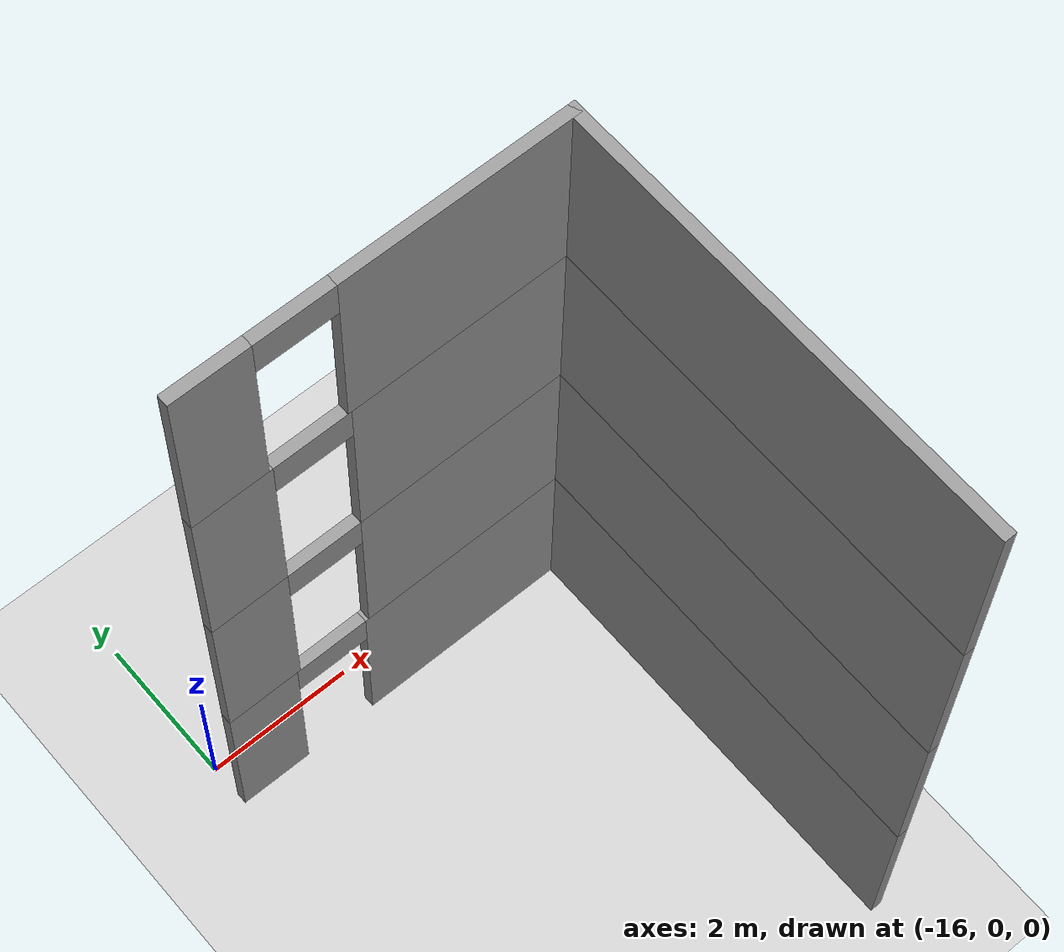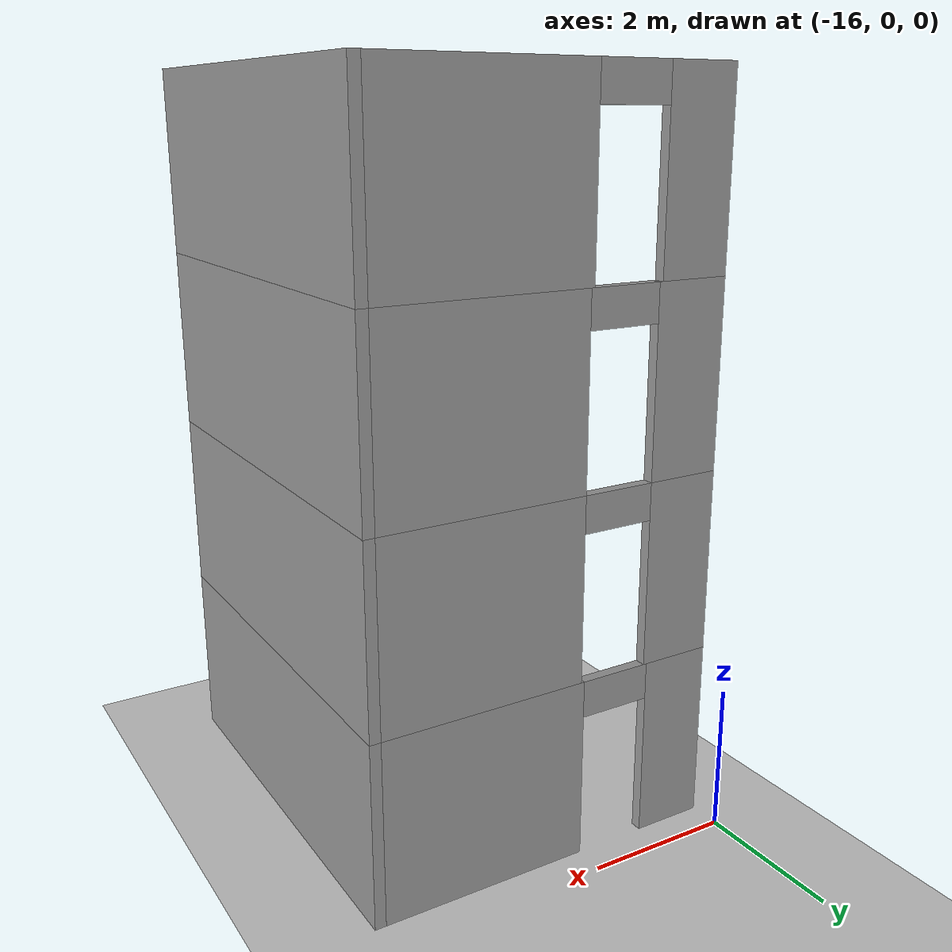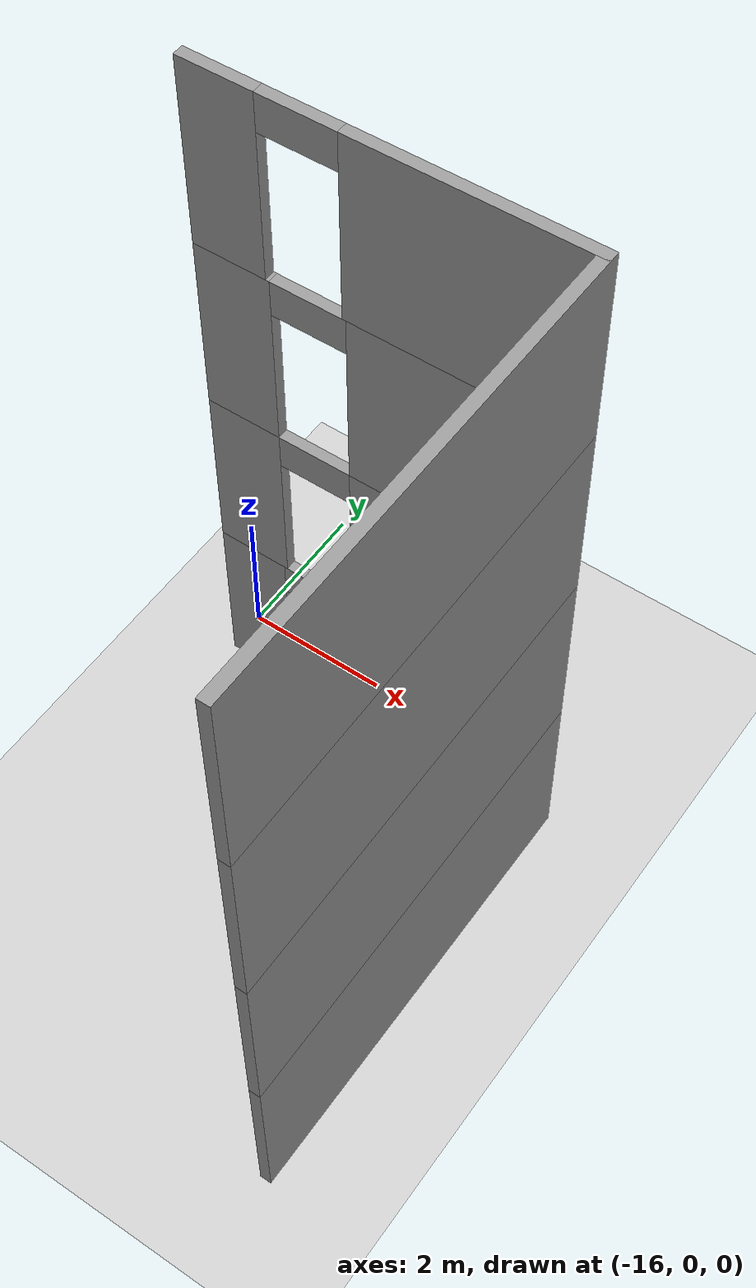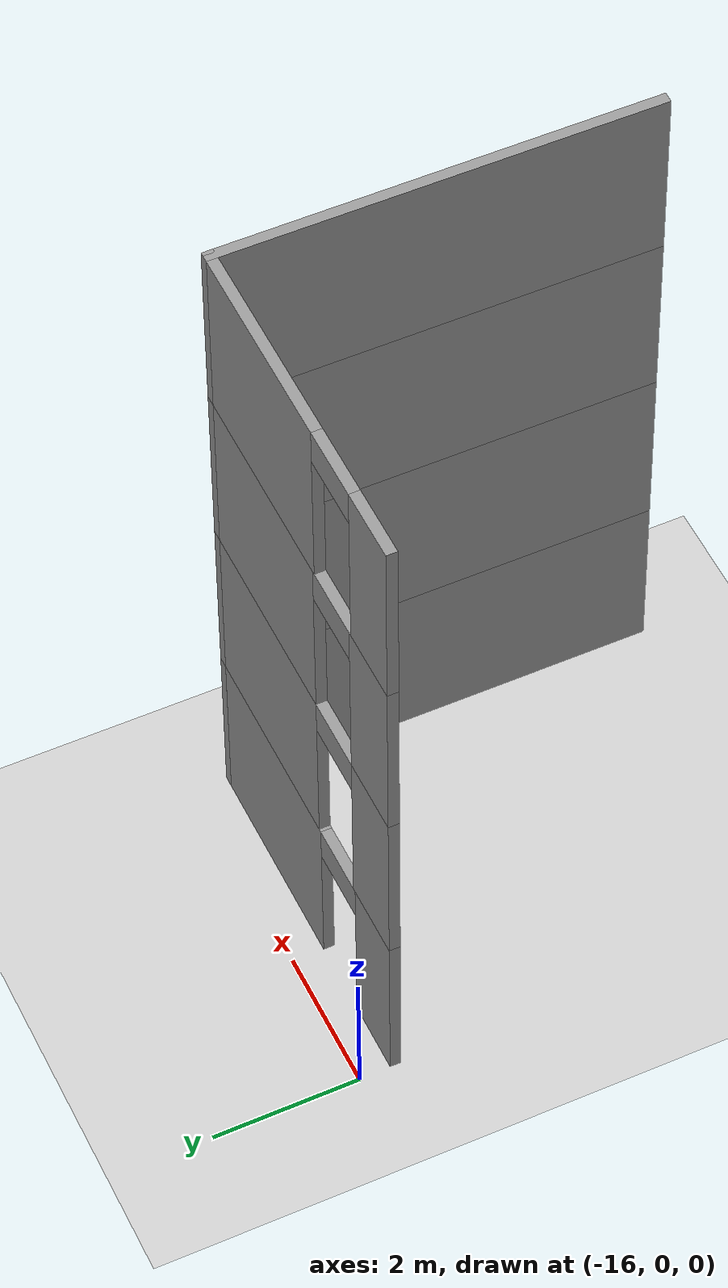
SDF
<sdf version="1.6">
 <world name="default">
  <model name="ground_plane">
   <static>1</static>
   <link name="link">
    <collision name="collision">
     <geometry><plane><normal>0 0 1</normal><size>100 100</size></plane></geometry>
     <surface>
      <contact><collide_bitmask>65535</collide_bitmask></contact>
      <friction><ode><mu>100</mu><mu2>50</mu2></ode></friction>
     </surface>
    </collision>
    <visual name="visual">
     <cast_shadows>0</cast_shadows>
     <geometry><plane><normal>0 0 1</normal><size>100 100</size></plane></geometry>
     <material>
      <script><uri>file://media/materials/scripts/gazebo.material</uri><name>Gazebo/Grey</name></script>
     </material>
    </visual>
   </link>
  </model>
  <model name="floor2plan_v2">
   <link name="Wall_112">
    <pose>-13.4109 -0.509284 5 0 -0 0</pose>
    <visual name="Wall_112_Visual_2">
     <pose>-0.976 0 2.25 0 -0 0</pose>
     <geometry><box><size>1 0.15 0.5</size></box></geometry>
     <material>
      <script><uri>file://media/materials/scripts/gazebo.material</uri><name>Gazebo/Grey</name></script>
      <ambient>1 1 1 1</ambient>
      <shader type="pixel"/>
      <diffuse>0.7 0.7 0.7 1</diffuse>
      <specular>0.01 0.01 0.01 1</specular>
      <emissive>0 0 0 1</emissive>
     </material>
     <meta><layer>2</layer></meta>
    </visual>
    <visual name="Wall_112_Visual_0">
     <pose>-1.988 0 1.25 0 -0 0</pose>
     <geometry><box><size>1.024 0.15 2.5</size></box></geometry>
     <material>
      <script><uri>file://media/materials/scripts/gazebo.material</uri><name>Gazebo/Grey</name></script>
      <ambient>1 1 1 1</ambient>
      <shader type="pixel"/>
      <diffuse>0.7 0.7 0.7 1</diffuse>
      <specular>0.01 0.01 0.01 1</specular>
      <emissive>0 0 0 1</emissive>
     </material>
     <meta><layer>2</layer></meta>
    </visual>
    <visual name="Wall_112_Visual_1">
     <pose>1.012 0 1.25 0 -0 0</pose>
     <geometry><box><size>2.976 0.15 2.5</size></box></geometry>
     <material>
      <script><uri>file://media/materials/scripts/gazebo.material</uri><name>Gazebo/Grey</name></script>
      <ambient>1 1 1 1</ambient>
      <shader type="pixel"/>
      <diffuse>0.7 0.7 0.7 1</diffuse>
      <specular>0.01 0.01 0.01 1</specular>
      <emissive>0 0 0 1</emissive>
     </material>
     <meta><layer>2</layer></meta>
    </visual>
    <collision name="Wall_112_Collision_0">
     <pose>-1.988 0 1.25 0 -0 0</pose>
     <geometry><box><size>1.024 0.15 2.5</size></box></geometry>
     <surface>
      <friction>
       <ode><mu>1</mu><mu2>1</mu2><fdir1>0 0 0</fdir1><slip1>0</slip1><slip2>0</slip2></ode>
       <torsional>
        <coefficient>1</coefficient>
        <patch_radius>0</patch_radius>
        <surface_radius>0</surface_radius>
        <use_patch_radius>1</use_patch_radius>
        <ode><slip>0</slip></ode>
       </torsional>
      </friction>
      <bounce><restitution_coefficient>0</restitution_coefficient><threshold>1e+06</threshold></bounce>
      <contact>
       <collide_without_contact>0</collide_without_contact>
       <collide_without_contact_bitmask>1</collide_without_contact_bitmask>
       <collide_bitmask>1</collide_bitmask>
       <ode>
        <soft_cfm>0</soft_cfm>
        <soft_erp>0.2</soft_erp>
        <kp>1e+13</kp>
        <kd>1</kd>
        <max_vel>0.01</max_vel>
        <min_depth>0</min_depth>
       </ode>
       <bullet>
        <split_impulse>1</split_impulse>
        <split_impulse_penetration_threshold>-0.01</split_impulse_penetration_threshold>
        <soft_cfm>0</soft_cfm>
        <soft_erp>0.2</soft_erp>
        <kp>1e+13</kp>
        <kd>1</kd>
       </bullet>
      </contact>
     </surface>
    </collision>
    <collision name="Wall_112_Collision_1">
     <pose>1.012 0 1.25 0 -0 0</pose>
     <geometry><box><size>2.976 0.15 2.5</size></box></geometry>
     <surface>
      <friction>
       <ode><mu>1</mu><mu2>1</mu2><fdir1>0 0 0</fdir1><slip1>0</slip1><slip2>0</slip2></ode>
       <torsional>
        <coefficient>1</coefficient>
        <patch_radius>0</patch_radius>
        <surface_radius>0</surface_radius>
        <use_patch_radius>1</use_patch_radius>
        <ode><slip>0</slip></ode>
       </torsional>
      </friction>
      <bounce><restitution_coefficient>0</restitution_coefficient><threshold>1e+06</threshold></bounce>
      <contact>
       <collide_without_contact>0</collide_without_contact>
       <collide_without_contact_bitmask>1</collide_without_contact_bitmask>
       <collide_bitmask>1</collide_bitmask>
       <ode>
        <soft_cfm>0</soft_cfm>
        <soft_erp>0.2</soft_erp>
        <kp>1e+13</kp>
        <kd>1</kd>
        <max_vel>0.01</max_vel>
        <min_depth>0</min_depth>
       </ode>
       <bullet>
        <split_impulse>1</split_impulse>
        <split_impulse_penetration_threshold>-0.01</split_impulse_penetration_threshold>
        <soft_cfm>0</soft_cfm>
        <soft_erp>0.2</soft_erp>
        <kp>1e+13</kp>
        <kd>1</kd>
       </bullet>
      </contact>
     </surface>
    </collision>
    <collision name="Wall_112_Collision_2">
     <pose>-0.976 0 2.25 0 -0 0</pose>
     <geometry><box><size>1 0.15 0.5</size></box></geometry>
     <surface>
      <friction>
       <ode><mu>1</mu><mu2>1</mu2><fdir1>0 0 0</fdir1><slip1>0</slip1><slip2>0</slip2></ode>
       <torsional>
        <coefficient>1</coefficient>
        <patch_radius>0</patch_radius>
        <surface_radius>0</surface_radius>
        <use_patch_radius>1</use_patch_radius>
        <ode><slip>0</slip></ode>
       </torsional>
      </friction>
      <bounce><restitution_coefficient>0</restitution_coefficient><threshold>1e+06</threshold></bounce>
      <contact>
       <collide_without_contact>0</collide_without_contact>
       <collide_without_contact_bitmask>1</collide_without_contact_bitmask>
       <collide_bitmask>1</collide_bitmask>
       <ode>
        <soft_cfm>0</soft_cfm>
        <soft_erp>0.2</soft_erp>
        <kp>1e+13</kp>
        <kd>1</kd>
        <max_vel>0.01</max_vel>
        <min_depth>0</min_depth>
       </ode>
       <bullet>
        <split_impulse>1</split_impulse>
        <split_impulse_penetration_threshold>-0.01</split_impulse_penetration_threshold>
        <soft_cfm>0</soft_cfm>
        <soft_erp>0.2</soft_erp>
        <kp>1e+13</kp>
        <kd>1</kd>
       </bullet>
      </contact>
     </surface>
    </collision>
   </link>
   <link name="Wall_113">
    <pose>-10.9859 -3.43428 5 0 0 -1.5708</pose>
    <visual name="Wall_113_Visual">
     <pose>0 0 1.25 0 -0 0</pose>
     <geometry><box><size>6 0.15 2.5</size></box></geometry>
     <material>
      <script><uri>file://media/materials/scripts/gazebo.material</uri><name>Gazebo/Grey</name></script>
      <ambient>1 1 1 1</ambient>
      <shader type="pixel"/>
      <diffuse>0.7 0.7 0.7 1</diffuse>
      <specular>0.01 0.01 0.01 1</specular>
      <emissive>0 0 0 1</emissive>
     </material>
     <meta><layer>2</layer></meta>
    </visual>
    <collision name="Wall_113_Collision">
     <pose>0 0 1.25 0 -0 0</pose>
     <geometry><box><size>6 0.15 2.5</size></box></geometry>
     <surface>
      <friction>
       <ode><mu>1</mu><mu2>1</mu2><fdir1>0 0 0</fdir1><slip1>0</slip1><slip2>0</slip2></ode>
       <torsional>
        <coefficient>1</coefficient>
        <patch_radius>0</patch_radius>
        <surface_radius>0</surface_radius>
        <use_patch_radius>1</use_patch_radius>
        <ode><slip>0</slip></ode>
       </torsional>
      </friction>
      <bounce><restitution_coefficient>0</restitution_coefficient><threshold>1e+06</threshold></bounce>
      <contact>
       <collide_without_contact>0</collide_without_contact>
       <collide_without_contact_bitmask>1</collide_without_contact_bitmask>
       <collide_bitmask>1</collide_bitmask>
       <ode>
        <soft_cfm>0</soft_cfm>
        <soft_erp>0.2</soft_erp>
        <kp>1e+13</kp>
        <kd>1</kd>
        <max_vel>0.01</max_vel>
        <min_depth>0</min_depth>
       </ode>
       <bullet>
        <split_impulse>1</split_impulse>
        <split_impulse_penetration_threshold>-0.01</split_impulse_penetration_threshold>
        <soft_cfm>0</soft_cfm>
        <soft_erp>0.2</soft_erp>
        <kp>1e+13</kp>
        <kd>1</kd>
       </bullet>
      </contact>
     </surface>
    </collision>
   </link>
   <link name="Wall_138">
    <pose>-13.4109 -0.509284 7.5 0 -0 0</pose>
    <visual name="Wall_138_Visual_0">
     <pose>-2.011 0 1.25 0 -0 0</pose>
     <geometry><box><size>0.978 0.15 2.5</size></box></geometry>
     <material>
      <script><uri>file://media/materials/scripts/gazebo.material</uri><name>Gazebo/Grey</name></script>
      <ambient>1 1 1 1</ambient>
      <shader type="pixel"/>
      <diffuse>0.7 0.7 0.7 1</diffuse>
      <specular>0.01 0.01 0.01 1</specular>
      <emissive>0 0 0 1</emissive>
     </material>
     <meta><layer>3</layer></meta>
    </visual>
    <visual name="Wall_138_Visual_1">
     <pose>0.989 0 1.25 0 -0 0</pose>
     <geometry><box><size>3.022 0.15 2.5</size></box></geometry>
     <material>
      <script><uri>file://media/materials/scripts/gazebo.material</uri><name>Gazebo/Grey</name></script>
      <ambient>1 1 1 1</ambient>
      <shader type="pixel"/>
      <diffuse>0.7 0.7 0.7 1</diffuse>
      <specular>0.01 0.01 0.01 1</specular>
      <emissive>0 0 0 1</emissive>
     </material>
     <meta><layer>3</layer></meta>
    </visual>
    <visual name="Wall_138_Visual_2">
     <pose>-1.022 0 2.25 0 -0 0</pose>
     <geometry><box><size>1 0.15 0.5</size></box></geometry>
     <material>
      <script><uri>file://media/materials/scripts/gazebo.material</uri><name>Gazebo/Grey</name></script>
      <ambient>1 1 1 1</ambient>
      <shader type="pixel"/>
      <diffuse>0.7 0.7 0.7 1</diffuse>
      <specular>0.01 0.01 0.01 1</specular>
      <emissive>0 0 0 1</emissive>
     </material>
     <meta><layer>3</layer></meta>
    </visual>
    <collision name="Wall_138_Collision_0">
     <pose>-2.011 0 1.25 0 -0 0</pose>
     <geometry><box><size>0.978 0.15 2.5</size></box></geometry>
     <surface>
      <friction>
       <ode><mu>1</mu><mu2>1</mu2><fdir1>0 0 0</fdir1><slip1>0</slip1><slip2>0</slip2></ode>
       <torsional>
        <coefficient>1</coefficient>
        <patch_radius>0</patch_radius>
        <surface_radius>0</surface_radius>
        <use_patch_radius>1</use_patch_radius>
        <ode><slip>0</slip></ode>
       </torsional>
      </friction>
      <bounce><restitution_coefficient>0</restitution_coefficient><threshold>1e+06</threshold></bounce>
      <contact>
       <collide_without_contact>0</collide_without_contact>
       <collide_without_contact_bitmask>1</collide_without_contact_bitmask>
       <collide_bitmask>1</collide_bitmask>
       <ode>
        <soft_cfm>0</soft_cfm>
        <soft_erp>0.2</soft_erp>
        <kp>1e+13</kp>
        <kd>1</kd>
        <max_vel>0.01</max_vel>
        <min_depth>0</min_depth>
       </ode>
       <bullet>
        <split_impulse>1</split_impulse>
        <split_impulse_penetration_threshold>-0.01</split_impulse_penetration_threshold>
        <soft_cfm>0</soft_cfm>
        <soft_erp>0.2</soft_erp>
        <kp>1e+13</kp>
        <kd>1</kd>
       </bullet>
      </contact>
     </surface>
    </collision>
    <collision name="Wall_138_Collision_1">
     <pose>0.989 0 1.25 0 -0 0</pose>
     <geometry><box><size>3.022 0.15 2.5</size></box></geometry>
     <surface>
      <friction>
       <ode><mu>1</mu><mu2>1</mu2><fdir1>0 0 0</fdir1><slip1>0</slip1><slip2>0</slip2></ode>
       <torsional>
        <coefficient>1</coefficient>
        <patch_radius>0</patch_radius>
        <surface_radius>0</surface_radius>
        <use_patch_radius>1</use_patch_radius>
        <ode><slip>0</slip></ode>
       </torsional>
      </friction>
      <bounce><restitution_coefficient>0</restitution_coefficient><threshold>1e+06</threshold></bounce>
      <contact>
       <collide_without_contact>0</collide_without_contact>
       <collide_without_contact_bitmask>1</collide_without_contact_bitmask>
       <collide_bitmask>1</collide_bitmask>
       <ode>
        <soft_cfm>0</soft_cfm>
        <soft_erp>0.2</soft_erp>
        <kp>1e+13</kp>
        <kd>1</kd>
        <max_vel>0.01</max_vel>
        <min_depth>0</min_depth>
       </ode>
       <bullet>
        <split_impulse>1</split_impulse>
        <split_impulse_penetration_threshold>-0.01</split_impulse_penetration_threshold>
        <soft_cfm>0</soft_cfm>
        <soft_erp>0.2</soft_erp>
        <kp>1e+13</kp>
        <kd>1</kd>
       </bullet>
      </contact>
     </surface>
    </collision>
    <collision name="Wall_138_Collision_2">
     <pose>-1.022 0 2.25 0 -0 0</pose>
     <geometry><box><size>1 0.15 0.5</size></box></geometry>
     <surface>
      <friction>
       <ode><mu>1</mu><mu2>1</mu2><fdir1>0 0 0</fdir1><slip1>0</slip1><slip2>0</slip2></ode>
       <torsional>
        <coefficient>1</coefficient>
        <patch_radius>0</patch_radius>
        <surface_radius>0</surface_radius>
        <use_patch_radius>1</use_patch_radius>
        <ode><slip>0</slip></ode>
       </torsional>
      </friction>
      <bounce><restitution_coefficient>0</restitution_coefficient><threshold>1e+06</threshold></bounce>
      <contact>
       <collide_without_contact>0</collide_without_contact>
       <collide_without_contact_bitmask>1</collide_without_contact_bitmask>
       <collide_bitmask>1</collide_bitmask>
       <ode>
        <soft_cfm>0</soft_cfm>
        <soft_erp>0.2</soft_erp>
        <kp>1e+13</kp>
        <kd>1</kd>
        <max_vel>0.01</max_vel>
        <min_depth>0</min_depth>
       </ode>
       <bullet>
        <split_impulse>1</split_impulse>
        <split_impulse_penetration_threshold>-0.01</split_impulse_penetration_threshold>
        <soft_cfm>0</soft_cfm>
        <soft_erp>0.2</soft_erp>
        <kp>1e+13</kp>
        <kd>1</kd>
       </bullet>
      </contact>
     </surface>
    </collision>
   </link>
   <link name="Wall_139">
    <pose>-10.9859 -3.43428 7.5 0 0 -1.5708</pose>
    <visual name="Wall_139_Visual">
     <pose>0 0 1.25 0 -0 0</pose>
     <geometry><box><size>6 0.15 2.5</size></box></geometry>
     <material>
      <script><uri>file://media/materials/scripts/gazebo.material</uri><name>Gazebo/Grey</name></script>
      <ambient>1 1 1 1</ambient>
      <shader type="pixel"/>
      <diffuse>0.7 0.7 0.7 1</diffuse>
      <specular>0.01 0.01 0.01 1</specular>
      <emissive>0 0 0 1</emissive>
     </material>
     <meta><layer>3</layer></meta>
    </visual>
    <collision name="Wall_139_Collision">
     <pose>0 0 1.25 0 -0 0</pose>
     <geometry><box><size>6 0.15 2.5</size></box></geometry>
     <surface>
      <friction>
       <ode><mu>1</mu><mu2>1</mu2><fdir1>0 0 0</fdir1><slip1>0</slip1><slip2>0</slip2></ode>
       <torsional>
        <coefficient>1</coefficient>
        <patch_radius>0</patch_radius>
        <surface_radius>0</surface_radius>
        <use_patch_radius>1</use_patch_radius>
        <ode><slip>0</slip></ode>
       </torsional>
      </friction>
      <bounce><restitution_coefficient>0</restitution_coefficient><threshold>1e+06</threshold></bounce>
      <contact>
       <collide_without_contact>0</collide_without_contact>
       <collide_without_contact_bitmask>1</collide_without_contact_bitmask>
       <collide_bitmask>1</collide_bitmask>
       <ode>
        <soft_cfm>0</soft_cfm>
        <soft_erp>0.2</soft_erp>
        <kp>1e+13</kp>
        <kd>1</kd>
        <max_vel>0.01</max_vel>
        <min_depth>0</min_depth>
       </ode>
       <bullet>
        <split_impulse>1</split_impulse>
        <split_impulse_penetration_threshold>-0.01</split_impulse_penetration_threshold>
        <soft_cfm>0</soft_cfm>
        <soft_erp>0.2</soft_erp>
        <kp>1e+13</kp>
        <kd>1</kd>
       </bullet>
      </contact>
     </surface>
    </collision>
   </link>
   <link name="Wall_44">
    <pose>-13.4109 -0.509284 0 0 -0 0</pose>
    <visual name="Wall_44_Visual_0">
     <pose>-2.011 0 1.25 0 -0 0</pose>
     <geometry><box><size>0.978 0.15 2.5</size></box></geometry>
     <material>
      <script><uri>file://media/materials/scripts/gazebo.material</uri><name>Gazebo/Grey</name></script>
      <ambient>1 1 1 1</ambient>
      <shader type="pixel"/>
      <diffuse>0.7 0.7 0.7 1</diffuse>
      <specular>0.01 0.01 0.01 1</specular>
      <emissive>0 0 0 1</emissive>
     </material>
     <meta><layer>0</layer></meta>
    </visual>
    <visual name="Wall_44_Visual_1">
     <pose>0.989 0 1.25 0 -0 0</pose>
     <geometry><box><size>3.022 0.15 2.5</size></box></geometry>
     <material>
      <script><uri>file://media/materials/scripts/gazebo.material</uri><name>Gazebo/Grey</name></script>
      <ambient>1 1 1 1</ambient>
      <shader type="pixel"/>
      <diffuse>0.7 0.7 0.7 1</diffuse>
      <specular>0.01 0.01 0.01 1</specular>
      <emissive>0 0 0 1</emissive>
     </material>
     <meta><layer>0</layer></meta>
    </visual>
    <visual name="Wall_44_Visual_2">
     <pose>-1.022 0 2.25 0 -0 0</pose>
     <geometry><box><size>1 0.15 0.5</size></box></geometry>
     <material>
      <script><uri>file://media/materials/scripts/gazebo.material</uri><name>Gazebo/Grey</name></script>
      <ambient>1 1 1 1</ambient>
      <shader type="pixel"/>
      <diffuse>0.7 0.7 0.7 1</diffuse>
      <specular>0.01 0.01 0.01 1</specular>
      <emissive>0 0 0 1</emissive>
     </material>
     <meta><layer>0</layer></meta>
    </visual>
    <collision name="Wall_44_Collision_0">
     <pose>-2.011 0 1.25 0 -0 0</pose>
     <geometry><box><size>0.978 0.15 2.5</size></box></geometry>
     <surface>
      <friction>
       <ode><mu>1</mu><mu2>1</mu2><fdir1>0 0 0</fdir1><slip1>0</slip1><slip2>0</slip2></ode>
       <torsional>
        <coefficient>1</coefficient>
        <patch_radius>0</patch_radius>
        <surface_radius>0</surface_radius>
        <use_patch_radius>1</use_patch_radius>
        <ode><slip>0</slip></ode>
       </torsional>
      </friction>
      <bounce><restitution_coefficient>0</restitution_coefficient><threshold>1e+06</threshold></bounce>
      <contact>
       <collide_without_contact>0</collide_without_contact>
       <collide_without_contact_bitmask>1</collide_without_contact_bitmask>
       <collide_bitmask>1</collide_bitmask>
       <ode>
        <soft_cfm>0</soft_cfm>
        <soft_erp>0.2</soft_erp>
        <kp>1e+13</kp>
        <kd>1</kd>
        <max_vel>0.01</max_vel>
        <min_depth>0</min_depth>
       </ode>
       <bullet>
        <split_impulse>1</split_impulse>
        <split_impulse_penetration_threshold>-0.01</split_impulse_penetration_threshold>
        <soft_cfm>0</soft_cfm>
        <soft_erp>0.2</soft_erp>
        <kp>1e+13</kp>
        <kd>1</kd>
       </bullet>
      </contact>
     </surface>
    </collision>
    <collision name="Wall_44_Collision_1">
     <pose>0.989 0 1.25 0 -0 0</pose>
     <geometry><box><size>3.022 0.15 2.5</size></box></geometry>
     <surface>
      <friction>
       <ode><mu>1</mu><mu2>1</mu2><fdir1>0 0 0</fdir1><slip1>0</slip1><slip2>0</slip2></ode>
       <torsional>
        <coefficient>1</coefficient>
        <patch_radius>0</patch_radius>
        <surface_radius>0</surface_radius>
        <use_patch_radius>1</use_patch_radius>
        <ode><slip>0</slip></ode>
       </torsional>
      </friction>
      <bounce><restitution_coefficient>0</restitution_coefficient><threshold>1e+06</threshold></bounce>
      <contact>
       <collide_without_contact>0</collide_without_contact>
       <collide_without_contact_bitmask>1</collide_without_contact_bitmask>
       <collide_bitmask>1</collide_bitmask>
       <ode>
        <soft_cfm>0</soft_cfm>
        <soft_erp>0.2</soft_erp>
        <kp>1e+13</kp>
        <kd>1</kd>
        <max_vel>0.01</max_vel>
        <min_depth>0</min_depth>
       </ode>
       <bullet>
        <split_impulse>1</split_impulse>
        <split_impulse_penetration_threshold>-0.01</split_impulse_penetration_threshold>
        <soft_cfm>0</soft_cfm>
        <soft_erp>0.2</soft_erp>
        <kp>1e+13</kp>
        <kd>1</kd>
       </bullet>
      </contact>
     </surface>
    </collision>
    <collision name="Wall_44_Collision_2">
     <pose>-1.022 0 2.25 0 -0 0</pose>
     <geometry><box><size>1 0.15 0.5</size></box></geometry>
     <surface>
      <friction>
       <ode><mu>1</mu><mu2>1</mu2><fdir1>0 0 0</fdir1><slip1>0</slip1><slip2>0</slip2></ode>
       <torsional>
        <coefficient>1</coefficient>
        <patch_radius>0</patch_radius>
        <surface_radius>0</surface_radius>
        <use_patch_radius>1</use_patch_radius>
        <ode><slip>0</slip></ode>
       </torsional>
      </friction>
      <bounce><restitution_coefficient>0</restitution_coefficient><threshold>1e+06</threshold></bounce>
      <contact>
       <collide_without_contact>0</collide_without_contact>
       <collide_without_contact_bitmask>1</collide_without_contact_bitmask>
       <collide_bitmask>1</collide_bitmask>
       <ode>
        <soft_cfm>0</soft_cfm>
        <soft_erp>0.2</soft_erp>
        <kp>1e+13</kp>
        <kd>1</kd>
        <max_vel>0.01</max_vel>
        <min_depth>0</min_depth>
       </ode>
       <bullet>
        <split_impulse>1</split_impulse>
        <split_impulse_penetration_threshold>-0.01</split_impulse_penetration_threshold>
        <soft_cfm>0</soft_cfm>
        <soft_erp>0.2</soft_erp>
        <kp>1e+13</kp>
        <kd>1</kd>
       </bullet>
      </contact>
     </surface>
    </collision>
   </link>
   <link name="Wall_49">
    <pose>-10.9859 -3.43428 0 0 0 -1.5708</pose>
    <visual name="Wall_49_Visual">
     <pose>0 0 1.25 0 -0 0</pose>
     <geometry><box><size>6 0.15 2.5</size></box></geometry>
     <material>
      <script><uri>file://media/materials/scripts/gazebo.material</uri><name>Gazebo/Grey</name></script>
      <ambient>1 1 1 1</ambient>
      <shader type="pixel"/>
      <diffuse>0.7 0.7 0.7 1</diffuse>
      <specular>0.01 0.01 0.01 1</specular>
      <emissive>0 0 0 1</emissive>
     </material>
     <meta><layer>0</layer></meta>
    </visual>
    <collision name="Wall_49_Collision">
     <pose>0 0 1.25 0 -0 0</pose>
     <geometry><box><size>6 0.15 2.5</size></box></geometry>
     <surface>
      <friction>
       <ode><mu>1</mu><mu2>1</mu2><fdir1>0 0 0</fdir1><slip1>0</slip1><slip2>0</slip2></ode>
       <torsional>
        <coefficient>1</coefficient>
        <patch_radius>0</patch_radius>
        <surface_radius>0</surface_radius>
        <use_patch_radius>1</use_patch_radius>
        <ode><slip>0</slip></ode>
       </torsional>
      </friction>
      <bounce><restitution_coefficient>0</restitution_coefficient><threshold>1e+06</threshold></bounce>
      <contact>
       <collide_without_contact>0</collide_without_contact>
       <collide_without_contact_bitmask>1</collide_without_contact_bitmask>
       <collide_bitmask>1</collide_bitmask>
       <ode>
        <soft_cfm>0</soft_cfm>
        <soft_erp>0.2</soft_erp>
        <kp>1e+13</kp>
        <kd>1</kd>
        <max_vel>0.01</max_vel>
        <min_depth>0</min_depth>
       </ode>
       <bullet>
        <split_impulse>1</split_impulse>
        <split_impulse_penetration_threshold>-0.01</split_impulse_penetration_threshold>
        <soft_cfm>0</soft_cfm>
        <soft_erp>0.2</soft_erp>
        <kp>1e+13</kp>
        <kd>1</kd>
       </bullet>
      </contact>
     </surface>
    </collision>
   </link>
   <link name="Wall_86">
    <pose>-13.4109 -0.509284 2.5 0 -0 0</pose>
    <visual name="Wall_86_Visual_0">
     <pose>-1.988 0 1.25 0 -0 0</pose>
     <geometry><box><size>1.024 0.15 2.5</size></box></geometry>
     <material>
      <script><uri>file://media/materials/scripts/gazebo.material</uri><name>Gazebo/Grey</name></script>
      <ambient>1 1 1 1</ambient>
      <shader type="pixel"/>
      <diffuse>0.7 0.7 0.7 1</diffuse>
      <specular>0.01 0.01 0.01 1</specular>
      <emissive>0 0 0 1</emissive>
     </material>
     <meta><layer>1</layer></meta>
    </visual>
    <visual name="Wall_86_Visual_1">
     <pose>1.012 0 1.25 0 -0 0</pose>
     <geometry><box><size>2.976 0.15 2.5</size></box></geometry>
     <material>
      <script><uri>file://media/materials/scripts/gazebo.material</uri><name>Gazebo/Grey</name></script>
      <ambient>1 1 1 1</ambient>
      <shader type="pixel"/>
      <diffuse>0.7 0.7 0.7 1</diffuse>
      <specular>0.01 0.01 0.01 1</specular>
      <emissive>0 0 0 1</emissive>
     </material>
     <meta><layer>1</layer></meta>
    </visual>
    <visual name="Wall_86_Visual_2">
     <pose>-0.976 0 2.25 0 -0 0</pose>
     <geometry><box><size>1 0.15 0.5</size></box></geometry>
     <material>
      <script><uri>file://media/materials/scripts/gazebo.material</uri><name>Gazebo/Grey</name></script>
      <ambient>1 1 1 1</ambient>
      <shader type="pixel"/>
      <diffuse>0.7 0.7 0.7 1</diffuse>
      <specular>0.01 0.01 0.01 1</specular>
      <emissive>0 0 0 1</emissive>
     </material>
     <meta><layer>1</layer></meta>
    </visual>
    <collision name="Wall_86_Collision_0">
     <pose>-1.988 0 1.25 0 -0 0</pose>
     <geometry><box><size>1.024 0.15 2.5</size></box></geometry>
     <surface>
      <friction>
       <ode><mu>1</mu><mu2>1</mu2><fdir1>0 0 0</fdir1><slip1>0</slip1><slip2>0</slip2></ode>
       <torsional>
        <coefficient>1</coefficient>
        <patch_radius>0</patch_radius>
        <surface_radius>0</surface_radius>
        <use_patch_radius>1</use_patch_radius>
        <ode><slip>0</slip></ode>
       </torsional>
      </friction>
      <bounce><restitution_coefficient>0</restitution_coefficient><threshold>1e+06</threshold></bounce>
      <contact>
       <collide_without_contact>0</collide_without_contact>
       <collide_without_contact_bitmask>1</collide_without_contact_bitmask>
       <collide_bitmask>1</collide_bitmask>
       <ode>
        <soft_cfm>0</soft_cfm>
        <soft_erp>0.2</soft_erp>
        <kp>1e+13</kp>
        <kd>1</kd>
        <max_vel>0.01</max_vel>
        <min_depth>0</min_depth>
       </ode>
       <bullet>
        <split_impulse>1</split_impulse>
        <split_impulse_penetration_threshold>-0.01</split_impulse_penetration_threshold>
        <soft_cfm>0</soft_cfm>
        <soft_erp>0.2</soft_erp>
        <kp>1e+13</kp>
        <kd>1</kd>
       </bullet>
      </contact>
     </surface>
    </collision>
    <collision name="Wall_86_Collision_1">
     <pose>1.012 0 1.25 0 -0 0</pose>
     <geometry><box><size>2.976 0.15 2.5</size></box></geometry>
     <surface>
      <friction>
       <ode><mu>1</mu><mu2>1</mu2><fdir1>0 0 0</fdir1><slip1>0</slip1><slip2>0</slip2></ode>
       <torsional>
        <coefficient>1</coefficient>
        <patch_radius>0</patch_radius>
        <surface_radius>0</surface_radius>
        <use_patch_radius>1</use_patch_radius>
        <ode><slip>0</slip></ode>
       </torsional>
      </friction>
      <bounce><restitution_coefficient>0</restitution_coefficient><threshold>1e+06</threshold></bounce>
      <contact>
       <collide_without_contact>0</collide_without_contact>
       <collide_without_contact_bitmask>1</collide_without_contact_bitmask>
       <collide_bitmask>1</collide_bitmask>
       <ode>
        <soft_cfm>0</soft_cfm>
        <soft_erp>0.2</soft_erp>
        <kp>1e+13</kp>
        <kd>1</kd>
        <max_vel>0.01</max_vel>
        <min_depth>0</min_depth>
       </ode>
       <bullet>
        <split_impulse>1</split_impulse>
        <split_impulse_penetration_threshold>-0.01</split_impulse_penetration_threshold>
        <soft_cfm>0</soft_cfm>
        <soft_erp>0.2</soft_erp>
        <kp>1e+13</kp>
        <kd>1</kd>
       </bullet>
      </contact>
     </surface>
    </collision>
    <collision name="Wall_86_Collision_2">
     <pose>-0.976 0 2.25 0 -0 0</pose>
     <geometry><box><size>1 0.15 0.5</size></box></geometry>
     <surface>
      <friction>
       <ode><mu>1</mu><mu2>1</mu2><fdir1>0 0 0</fdir1><slip1>0</slip1><slip2>0</slip2></ode>
       <torsional>
        <coefficient>1</coefficient>
        <patch_radius>0</patch_radius>
        <surface_radius>0</surface_radius>
        <use_patch_radius>1</use_patch_radius>
        <ode><slip>0</slip></ode>
       </torsional>
      </friction>
      <bounce><restitution_coefficient>0</restitution_coefficient><threshold>1e+06</threshold></bounce>
      <contact>
       <collide_without_contact>0</collide_without_contact>
       <collide_without_contact_bitmask>1</collide_without_contact_bitmask>
       <collide_bitmask>1</collide_bitmask>
       <ode>
        <soft_cfm>0</soft_cfm>
        <soft_erp>0.2</soft_erp>
        <kp>1e+13</kp>
        <kd>1</kd>
        <max_vel>0.01</max_vel>
        <min_depth>0</min_depth>
       </ode>
       <bullet>
        <split_impulse>1</split_impulse>
        <split_impulse_penetration_threshold>-0.01</split_impulse_penetration_threshold>
        <soft_cfm>0</soft_cfm>
        <soft_erp>0.2</soft_erp>
        <kp>1e+13</kp>
        <kd>1</kd>
       </bullet>
      </contact>
     </surface>
    </collision>
   </link>
   <link name="Wall_87">
    <pose>-10.9859 -3.43428 2.5 0 0 -1.5708</pose>
    <visual name="Wall_87_Visual">
     <pose>0 0 1.25 0 -0 0</pose>
     <geometry><box><size>6 0.15 2.5</size></box></geometry>
     <material>
      <script><uri>file://media/materials/scripts/gazebo.material</uri><name>Gazebo/Grey</name></script>
      <ambient>1 1 1 1</ambient>
      <shader type="pixel"/>
      <diffuse>0.7 0.7 0.7 1</diffuse>
      <specular>0.01 0.01 0.01 1</specular>
      <emissive>0 0 0 1</emissive>
     </material>
     <meta><layer>1</layer></meta>
    </visual>
    <collision name="Wall_87_Collision">
     <pose>0 0 1.25 0 -0 0</pose>
     <geometry><box><size>6 0.15 2.5</size></box></geometry>
     <surface>
      <friction>
       <ode><mu>1</mu><mu2>1</mu2><fdir1>0 0 0</fdir1><slip1>0</slip1><slip2>0</slip2></ode>
       <torsional>
        <coefficient>1</coefficient>
        <patch_radius>0</patch_radius>
        <surface_radius>0</surface_radius>
        <use_patch_radius>1</use_patch_radius>
        <ode><slip>0</slip></ode>
       </torsional>
      </friction>
      <bounce><restitution_coefficient>0</restitution_coefficient><threshold>1e+06</threshold></bounce>
      <contact>
       <collide_without_contact>0</collide_without_contact>
       <collide_without_contact_bitmask>1</collide_without_contact_bitmask>
       <collide_bitmask>1</collide_bitmask>
       <ode>
        <soft_cfm>0</soft_cfm>
        <soft_erp>0.2</soft_erp>
        <kp>1e+13</kp>
        <kd>1</kd>
        <max_vel>0.01</max_vel>
        <min_depth>0</min_depth>
       </ode>
       <bullet>
        <split_impulse>1</split_impulse>
        <split_impulse_penetration_threshold>-0.01</split_impulse_penetration_threshold>
        <soft_cfm>0</soft_cfm>
        <soft_erp>0.2</soft_erp>
        <kp>1e+13</kp>
        <kd>1</kd>
       </bullet>
      </contact>
     </surface>
    </collision>
   </link>
   <static>1</static>
   <pose>-0.074109 0.009792 0 0 -0 0</pose>
  </model>
 </world>
</sdf>
